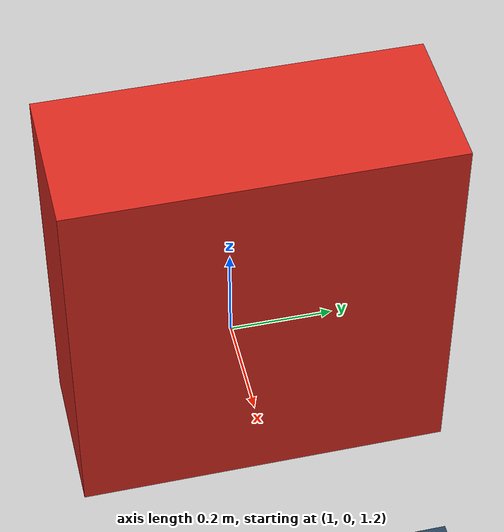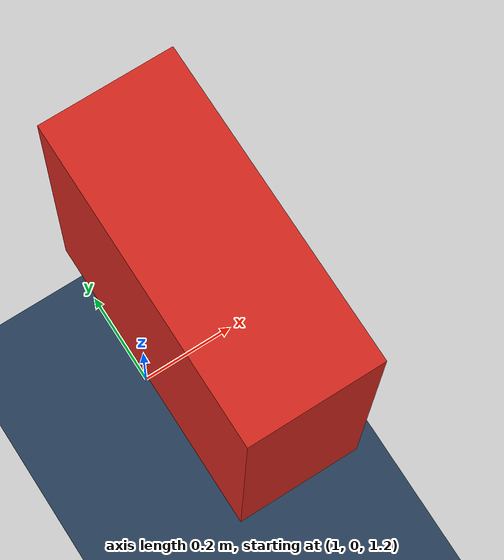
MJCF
<mujoco model="TinyRacer vision obstacle">
  <option integrator="RK4" density="1.225" viscosity="1.8e-5" timestep="0.001"/>
  <compiler inertiafromgeom="false" autolimits="true"/>
  <statistic center="1 0 1" extent="2.5"/>
  <visual>
    <headlight diffuse="0.6 0.6 0.6" ambient="0.5 0.5 0.5" specular="0 0 0"/>
    <rgba haze="0.15 0.25 0.35 0" fog="1 1 1 0"/>
    <map fogstart="0" fogend="0"/>
    <global azimuth="0" elevation="-20" ellipsoidinertia="true"/>
  </visual>
  <asset>
    <texture type="skybox" builtin="gradient" rgb1="0.3 0.5 0.7" rgb2="0 0 0"
             width="512" height="3072"/>
    <texture type="2d" name="groundplane" builtin="checker" mark="edge"
             rgb1="0.2 0.3 0.4" rgb2="0.1 0.2 0.3" markrgb="0.8 0.8 0.8"
             width="512" height="512"/>
    <material name="groundplane" texture="groundplane" texuniform="true"
              texrepeat="2 2" reflectance="0.2"/>
  </asset>
  <worldbody>
    <light pos="0 0 4" dir="0 0 -1" directional="true"/>
    <geom name="floor" size="0 0 0.05" type="plane" material="groundplane"/>
    <geom name="obstacle" type="box" pos="1.15 0 1.5" size="0.14 0.34 0.36"
          rgba="0.85 0.16 0.12 1" contype="1" conaffinity="1"/>
  </worldbody>
</mujoco>
